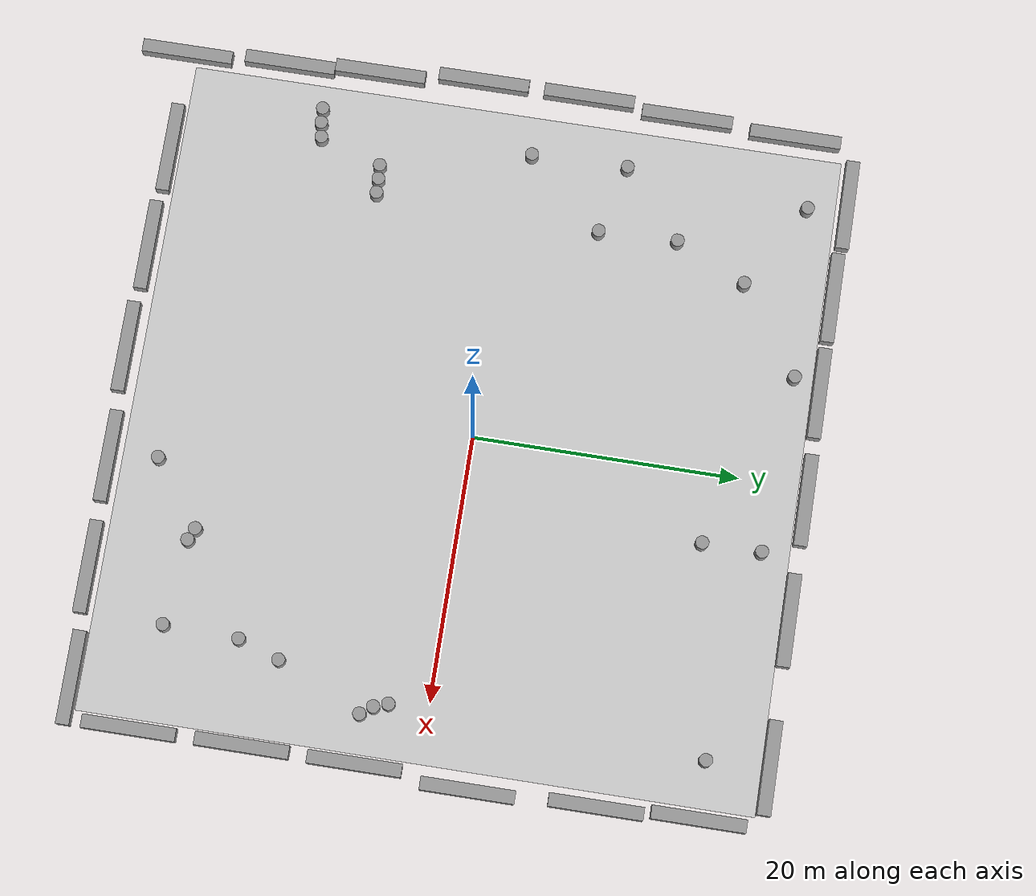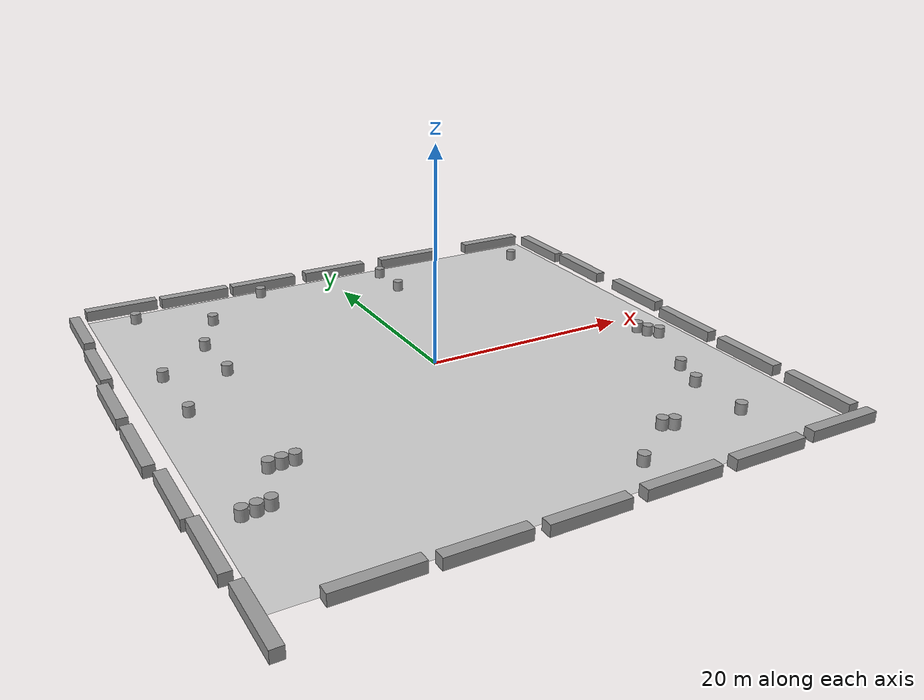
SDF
<sdf version="1.7">
 <world name="default">
  <light name="sun" type="directional">
   <pose>0 0 10 0 -0 0</pose>
   <diffuse>0.8 0.8 0.8 1</diffuse>
   <specular>0.2 0.2 0.2 1</specular>
   <attenuation>
    <range>1000</range>
    <constant>0.9</constant>
    <linear>0.01</linear>
    <quadratic>0.001</quadratic>
   </attenuation>
   <direction>-0.5 0.1 -0.9</direction>
   <spot><inner_angle>0</inner_angle><outer_angle>0</outer_angle><falloff>0</falloff></spot>
  </light>
  <gravity>0 0 -9.8</gravity>
  <magnetic_field>6e-06 2.3e-05 -4.2e-05</magnetic_field>
  <atmosphere type="adiabatic"/>
  <physics type="ode">
   <max_step_size>0.001</max_step_size>
   <real_time_factor>1</real_time_factor>
   <real_time_update_rate>1000</real_time_update_rate>
  </physics>
  <scene><ambient>0.4 0.4 0.4 1</ambient><background>0.7 0.7 0.7 1</background><shadows>1</shadows></scene>
  <spherical_coordinates>
   <surface_model>EARTH_WGS84</surface_model>
   <latitude_deg>0</latitude_deg>
   <longitude_deg>0</longitude_deg>
   <elevation>0</elevation>
   <heading_deg>0</heading_deg>
  </spherical_coordinates>
  <model name="grass">
   <static>1</static>
   <link name="link">
    <collision name="collision">
     <geometry><plane><normal>0 0 1</normal><size>10 10</size></plane></geometry>
     <surface><friction><ode><mu>100</mu><mu2>50</mu2></ode></friction></surface>
    </collision>
    <visual name="visual">
     <cast_shadows>0</cast_shadows>
     <geometry><plane><normal>0 0 1</normal><size>50 50</size></plane></geometry>
     <material>
      <script><uri>model://grass/materials/scripts/grass.material</uri><name>grass/ground</name></script>
     </material>
    </visual>
   </link>
   <pose>-0.500597 -0.51469 0 0 -0 0</pose>
  </model>
  <model name="unit_cylinder">
   <pose>10.068 -19.0924 0.499997 2e-06 1e-06 0.002457</pose>
   <link name="link">
    <inertial>
     <mass>1</mass>
     <inertia><ixx>0.145833</ixx><ixy>0</ixy><ixz>0</ixz><iyy>0.145833</iyy><iyz>0</iyz><izz>0.125</izz></inertia>
    </inertial>
    <collision name="collision">
     <geometry><cylinder><radius>0.5</radius><length>1</length></cylinder></geometry>
    </collision>
    <visual name="visual">
     <geometry><cylinder><radius>0.5</radius><length>1</length></cylinder></geometry>
     <material>
      <script><name>Gazebo/Grey</name><uri>file://media/materials/scripts/gazebo.material</uri></script>
     </material>
    </visual>
   </link>
  </model>
  <model name="unit_cylinder_0">
   <pose>5.23243 -22.7535 0.499997 2e-06 1e-06 0</pose>
   <link name="link">
    <inertial>
     <mass>1</mass>
     <inertia><ixx>0.145833</ixx><ixy>0</ixy><ixz>0</ixz><iyy>0.145833</iyy><iyz>0</iyz><izz>0.125</izz></inertia>
    </inertial>
    <collision name="collision">
     <geometry><cylinder><radius>0.5</radius><length>1</length></cylinder></geometry>
    </collision>
    <visual name="visual">
     <geometry><cylinder><radius>0.5</radius><length>1</length></cylinder></geometry>
     <material>
      <script><name>Gazebo/Grey</name><uri>file://media/materials/scripts/gazebo.material</uri></script>
     </material>
    </visual>
   </link>
  </model>
  <model name="unit_cylinder_1">
   <pose>10.9805 -19.5037 0.499996 2e-06 -0 0.009473</pose>
   <link name="link">
    <inertial>
     <mass>1</mass>
     <inertia><ixx>0.145833</ixx><ixy>0</ixy><ixz>0</ixz><iyy>0.145833</iyy><iyz>0</iyz><izz>0.125</izz></inertia>
    </inertial>
    <collision name="collision">
     <geometry><cylinder><radius>0.5</radius><length>1</length></cylinder></geometry>
    </collision>
    <visual name="visual">
     <geometry><cylinder><radius>0.5</radius><length>1</length></cylinder></geometry>
     <material>
      <script><name>Gazebo/Grey</name><uri>file://media/materials/scripts/gazebo.material</uri></script>
     </material>
    </visual>
   </link>
  </model>
  <model name="unit_cylinder_2">
   <pose>17.4229 -20.1741 0.499997 2e-06 1e-06 0</pose>
   <link name="link">
    <inertial>
     <mass>1</mass>
     <inertia><ixx>0.145833</ixx><ixy>0</ixy><ixz>0</ixz><iyy>0.145833</iyy><iyz>0</iyz><izz>0.125</izz></inertia>
    </inertial>
    <collision name="collision">
     <geometry><cylinder><radius>0.5</radius><length>1</length></cylinder></geometry>
    </collision>
    <visual name="visual">
     <geometry><cylinder><radius>0.5</radius><length>1</length></cylinder></geometry>
     <material>
      <script><name>Gazebo/Grey</name><uri>file://media/materials/scripts/gazebo.material</uri></script>
     </material>
    </visual>
   </link>
  </model>
  <model name="unit_cylinder_3">
   <pose>17.5996 -14.5253 0.499997 2e-06 1e-06 0</pose>
   <link name="link">
    <inertial>
     <mass>1</mass>
     <inertia><ixx>0.145833</ixx><ixy>0</ixy><ixz>0</ixz><iyy>0.145833</iyy><iyz>0</iyz><izz>0.125</izz></inertia>
    </inertial>
    <collision name="collision">
     <geometry><cylinder><radius>0.5</radius><length>1</length></cylinder></geometry>
    </collision>
    <visual name="visual">
     <geometry><cylinder><radius>0.5</radius><length>1</length></cylinder></geometry>
     <material>
      <script><name>Gazebo/Grey</name><uri>file://media/materials/scripts/gazebo.material</uri></script>
     </material>
    </visual>
   </link>
  </model>
  <model name="unit_cylinder_4">
   <pose>18.6652 -11.3863 0.499994 -2e-06 -1e-06 0</pose>
   <link name="link">
    <inertial>
     <mass>1</mass>
     <inertia><ixx>0.145833</ixx><ixy>0</ixy><ixz>0</ixz><iyy>0.145833</iyy><iyz>0</iyz><izz>0.125</izz></inertia>
    </inertial>
    <collision name="collision">
     <geometry><cylinder><radius>0.5</radius><length>1</length></cylinder></geometry>
    </collision>
    <visual name="visual">
     <geometry><cylinder><radius>0.5</radius><length>1</length></cylinder></geometry>
     <material>
      <script><name>Gazebo/Grey</name><uri>file://media/materials/scripts/gazebo.material</uri></script>
     </material>
    </visual>
   </link>
  </model>
  <model name="unit_cylinder_5">
   <pose>21.6345 -4.91974 0.499997 3e-06 1e-06 -0</pose>
   <link name="link">
    <inertial>
     <mass>1</mass>
     <inertia><ixx>0.145833</ixx><ixy>0</ixy><ixz>0</ixz><iyy>0.145833</iyy><iyz>0</iyz><izz>0.125</izz></inertia>
    </inertial>
    <collision name="collision">
     <geometry><cylinder><radius>0.5</radius><length>1</length></cylinder></geometry>
    </collision>
    <visual name="visual">
     <geometry><cylinder><radius>0.5</radius><length>1</length></cylinder></geometry>
     <material>
      <script><name>Gazebo/Grey</name><uri>file://media/materials/scripts/gazebo.material</uri></script>
     </material>
    </visual>
   </link>
  </model>
  <model name="unit_cylinder_6">
   <pose>20.9636 -4.0158 0.499997 3e-06 1e-06 -0</pose>
   <link name="link">
    <inertial>
     <mass>1</mass>
     <inertia><ixx>0.145833</ixx><ixy>0</ixy><ixz>0</ixz><iyy>0.145833</iyy><iyz>0</iyz><izz>0.125</izz></inertia>
    </inertial>
    <collision name="collision">
     <geometry><cylinder><radius>0.5</radius><length>1</length></cylinder></geometry>
    </collision>
    <visual name="visual">
     <geometry><cylinder><radius>0.5</radius><length>1</length></cylinder></geometry>
     <material>
      <script><name>Gazebo/Grey</name><uri>file://media/materials/scripts/gazebo.material</uri></script>
     </material>
    </visual>
   </link>
  </model>
  <model name="unit_cylinder_7">
   <pose>20.5934 -2.95704 0.499994 -3e-06 -1e-06 -0</pose>
   <link name="link">
    <inertial>
     <mass>1</mass>
     <inertia><ixx>0.145833</ixx><ixy>0</ixy><ixz>0</ixz><iyy>0.145833</iyy><iyz>0</iyz><izz>0.125</izz></inertia>
    </inertial>
    <collision name="collision">
     <geometry><cylinder><radius>0.5</radius><length>1</length></cylinder></geometry>
    </collision>
    <visual name="visual">
     <geometry><cylinder><radius>0.5</radius><length>1</length></cylinder></geometry>
     <material>
      <script><name>Gazebo/Grey</name><uri>file://media/materials/scripts/gazebo.material</uri></script>
     </material>
    </visual>
   </link>
  </model>
  <model name="unit_cylinder_8">
   <pose>21.0544 20.3519 0.499997 3e-06 1e-06 -0</pose>
   <link name="link">
    <inertial>
     <mass>1</mass>
     <inertia><ixx>0.145833</ixx><ixy>0</ixy><ixz>0</ixz><iyy>0.145833</iyy><iyz>0</iyz><izz>0.125</izz></inertia>
    </inertial>
    <collision name="collision">
     <geometry><cylinder><radius>0.5</radius><length>1</length></cylinder></geometry>
    </collision>
    <visual name="visual">
     <geometry><cylinder><radius>0.5</radius><length>1</length></cylinder></geometry>
     <material>
      <script><name>Gazebo/Grey</name><uri>file://media/materials/scripts/gazebo.material</uri></script>
     </material>
    </visual>
   </link>
  </model>
  <model name="unit_cylinder_9">
   <pose>5.31202 22.3543 0.499994 -3e-06 -1e-06 -0</pose>
   <link name="link">
    <inertial>
     <mass>1</mass>
     <inertia><ixx>0.145833</ixx><ixy>0</ixy><ixz>0</ixz><iyy>0.145833</iyy><iyz>0</iyz><izz>0.125</izz></inertia>
    </inertial>
    <collision name="collision">
     <geometry><cylinder><radius>0.5</radius><length>1</length></cylinder></geometry>
    </collision>
    <visual name="visual">
     <geometry><cylinder><radius>0.5</radius><length>1</length></cylinder></geometry>
     <material>
      <script><name>Gazebo/Grey</name><uri>file://media/materials/scripts/gazebo.material</uri></script>
     </material>
    </visual>
   </link>
  </model>
  <model name="unit_cylinder_10">
   <pose>5.32308 17.9226 0.499997 3e-06 1e-06 -0</pose>
   <link name="link">
    <inertial>
     <mass>1</mass>
     <inertia><ixx>0.145833</ixx><ixy>0</ixy><ixz>0</ixz><iyy>0.145833</iyy><iyz>0</iyz><izz>0.125</izz></inertia>
    </inertial>
    <collision name="collision">
     <geometry><cylinder><radius>0.5</radius><length>1</length></cylinder></geometry>
    </collision>
    <visual name="visual">
     <geometry><cylinder><radius>0.5</radius><length>1</length></cylinder></geometry>
     <material>
      <script><name>Gazebo/Grey</name><uri>file://media/materials/scripts/gazebo.material</uri></script>
     </material>
    </visual>
   </link>
  </model>
  <model name="unit_cylinder_11">
   <pose>-8.15629 23.0363 0.499997 3e-06 1e-06 -0</pose>
   <link name="link">
    <inertial>
     <mass>1</mass>
     <inertia><ixx>0.145833</ixx><ixy>0</ixy><ixz>0</ixz><iyy>0.145833</iyy><iyz>0</iyz><izz>0.125</izz></inertia>
    </inertial>
    <collision name="collision">
     <geometry><cylinder><radius>0.5</radius><length>1</length></cylinder></geometry>
    </collision>
    <visual name="visual">
     <geometry><cylinder><radius>0.5</radius><length>1</length></cylinder></geometry>
     <material>
      <script><name>Gazebo/Grey</name><uri>file://media/materials/scripts/gazebo.material</uri></script>
     </material>
    </visual>
   </link>
  </model>
  <model name="unit_cylinder_12">
   <pose>-21.3041 22.3159 0.499994 -3e-06 -1e-06 -0</pose>
   <link name="link">
    <inertial>
     <mass>1</mass>
     <inertia><ixx>0.145833</ixx><ixy>0</ixy><ixz>0</ixz><iyy>0.145833</iyy><iyz>0</iyz><izz>0.125</izz></inertia>
    </inertial>
    <collision name="collision">
     <geometry><cylinder><radius>0.5</radius><length>1</length></cylinder></geometry>
    </collision>
    <visual name="visual">
     <geometry><cylinder><radius>0.5</radius><length>1</length></cylinder></geometry>
     <material>
      <script><name>Gazebo/Grey</name><uri>file://media/materials/scripts/gazebo.material</uri></script>
     </material>
    </visual>
   </link>
  </model>
  <model name="unit_cylinder_13">
   <pose>-17.2545 12.9465 0.499994 -3e-06 -1e-06 -0</pose>
   <link name="link">
    <inertial>
     <mass>1</mass>
     <inertia><ixx>0.145833</ixx><ixy>0</ixy><ixz>0</ixz><iyy>0.145833</iyy><iyz>0</iyz><izz>0.125</izz></inertia>
    </inertial>
    <collision name="collision">
     <geometry><cylinder><radius>0.5</radius><length>1</length></cylinder></geometry>
    </collision>
    <visual name="visual">
     <geometry><cylinder><radius>0.5</radius><length>1</length></cylinder></geometry>
     <material>
      <script><name>Gazebo/Grey</name><uri>file://media/materials/scripts/gazebo.material</uri></script>
     </material>
    </visual>
   </link>
  </model>
  <model name="unit_cylinder_14">
   <pose>-22.4143 8.40238 0.499994 -3e-06 -1e-06 -0</pose>
   <link name="link">
    <inertial>
     <mass>1</mass>
     <inertia><ixx>0.145833</ixx><ixy>0</ixy><ixz>0</ixz><iyy>0.145833</iyy><iyz>0</iyz><izz>0.125</izz></inertia>
    </inertial>
    <collision name="collision">
     <geometry><cylinder><radius>0.5</radius><length>1</length></cylinder></geometry>
    </collision>
    <visual name="visual">
     <geometry><cylinder><radius>0.5</radius><length>1</length></cylinder></geometry>
     <material>
      <script><name>Gazebo/Grey</name><uri>file://media/materials/scripts/gazebo.material</uri></script>
     </material>
    </visual>
   </link>
  </model>
  <model name="unit_cylinder_15">
   <pose>-17.0837 6.95572 0.499994 -3e-06 -1e-06 -0</pose>
   <link name="link">
    <inertial>
     <mass>1</mass>
     <inertia><ixx>0.145833</ixx><ixy>0</ixy><ixz>0</ixz><iyy>0.145833</iyy><iyz>0</iyz><izz>0.125</izz></inertia>
    </inertial>
    <collision name="collision">
     <geometry><cylinder><radius>0.5</radius><length>1</length></cylinder></geometry>
    </collision>
    <visual name="visual">
     <geometry><cylinder><radius>0.5</radius><length>1</length></cylinder></geometry>
     <material>
      <script><name>Gazebo/Grey</name><uri>file://media/materials/scripts/gazebo.material</uri></script>
     </material>
    </visual>
   </link>
  </model>
  <model name="unit_cylinder_16">
   <pose>-14.7467 18.362 0.499996 3e-06 1e-06 -0</pose>
   <link name="link">
    <inertial>
     <mass>1</mass>
     <inertia><ixx>0.145833</ixx><ixy>0</ixy><ixz>0</ixz><iyy>0.145833</iyy><iyz>0</iyz><izz>0.125</izz></inertia>
    </inertial>
    <collision name="collision">
     <geometry><cylinder><radius>0.5</radius><length>1</length></cylinder></geometry>
    </collision>
    <visual name="visual">
     <geometry><cylinder><radius>0.5</radius><length>1</length></cylinder></geometry>
     <material>
      <script><name>Gazebo/Grey</name><uri>file://media/materials/scripts/gazebo.material</uri></script>
     </material>
    </visual>
   </link>
  </model>
  <model name="unit_cylinder_17">
   <pose>-22.2747 1.07529 0.499993 -0 -0 -0</pose>
   <link name="link">
    <inertial>
     <mass>1</mass>
     <inertia><ixx>0.145833</ixx><ixy>0</ixy><ixz>0</ixz><iyy>0.145833</iyy><iyz>0</iyz><izz>0.125</izz></inertia>
    </inertial>
    <collision name="collision">
     <geometry><cylinder><radius>0.5</radius><length>1</length></cylinder></geometry>
    </collision>
    <visual name="visual">
     <geometry><cylinder><radius>0.5</radius><length>1</length></cylinder></geometry>
     <material>
      <script><name>Gazebo/Grey</name><uri>file://media/materials/scripts/gazebo.material</uri></script>
     </material>
    </visual>
   </link>
  </model>
  <model name="unit_cylinder_18">
   <pose>-18.5547 -10.1454 0.5 0 0 -0.000668</pose>
   <link name="link">
    <inertial>
     <mass>1</mass>
     <inertia><ixx>0.145833</ixx><ixy>0</ixy><ixz>0</ixz><iyy>0.145833</iyy><iyz>0</iyz><izz>0.125</izz></inertia>
    </inertial>
    <collision name="collision">
     <geometry><cylinder><radius>0.5</radius><length>1</length></cylinder></geometry>
    </collision>
    <visual name="visual">
     <geometry><cylinder><radius>0.5</radius><length>1</length></cylinder></geometry>
     <material>
      <script><name>Gazebo/Grey</name><uri>file://media/materials/scripts/gazebo.material</uri></script>
     </material>
    </visual>
   </link>
  </model>
  <model name="unit_cylinder_19">
   <pose>-17.4503 -10.1062 0.499997 3e-06 1e-06 -0.002645</pose>
   <link name="link">
    <inertial>
     <mass>1</mass>
     <inertia><ixx>0.145833</ixx><ixy>0</ixy><ixz>0</ixz><iyy>0.145833</iyy><iyz>0</iyz><izz>0.125</izz></inertia>
    </inertial>
    <collision name="collision">
     <geometry><cylinder><radius>0.5</radius><length>1</length></cylinder></geometry>
    </collision>
    <visual name="visual">
     <geometry><cylinder><radius>0.5</radius><length>1</length></cylinder></geometry>
     <material>
      <script><name>Gazebo/Grey</name><uri>file://media/materials/scripts/gazebo.material</uri></script>
     </material>
    </visual>
   </link>
  </model>
  <model name="unit_cylinder_20">
   <pose>-19.6264 -10.2158 0.499996 3e-06 1e-06 0.000567</pose>
   <link name="link">
    <inertial>
     <mass>1</mass>
     <inertia><ixx>0.145833</ixx><ixy>0</ixy><ixz>0</ixz><iyy>0.145833</iyy><iyz>0</iyz><izz>0.125</izz></inertia>
    </inertial>
    <collision name="collision">
     <geometry><cylinder><radius>0.5</radius><length>1</length></cylinder></geometry>
    </collision>
    <visual name="visual">
     <geometry><cylinder><radius>0.5</radius><length>1</length></cylinder></geometry>
     <material>
      <script><name>Gazebo/Grey</name><uri>file://media/materials/scripts/gazebo.material</uri></script>
     </material>
    </visual>
   </link>
  </model>
  <model name="unit_cylinder_21">
   <pose>-23.4196 -15.2422 0.499997 3e-06 2e-06 0.001576</pose>
   <link name="link">
    <inertial>
     <mass>1</mass>
     <inertia><ixx>0.145833</ixx><ixy>0</ixy><ixz>0</ixz><iyy>0.145833</iyy><iyz>0</iyz><izz>0.125</izz></inertia>
    </inertial>
    <collision name="collision">
     <geometry><cylinder><radius>0.5</radius><length>1</length></cylinder></geometry>
    </collision>
    <visual name="visual">
     <geometry><cylinder><radius>0.5</radius><length>1</length></cylinder></geometry>
     <material>
      <script><name>Gazebo/Grey</name><uri>file://media/materials/scripts/gazebo.material</uri></script>
     </material>
    </visual>
   </link>
  </model>
  <model name="unit_cylinder_22">
   <pose>-22.2905 -15.1677 0.499993 1e-06 -0 -8.6e-05</pose>
   <link name="link">
    <inertial>
     <mass>1</mass>
     <inertia><ixx>0.145833</ixx><ixy>0</ixy><ixz>0</ixz><iyy>0.145833</iyy><iyz>0</iyz><izz>0.125</izz></inertia>
    </inertial>
    <collision name="collision">
     <geometry><cylinder><radius>0.5</radius><length>1</length></cylinder></geometry>
    </collision>
    <visual name="visual">
     <geometry><cylinder><radius>0.5</radius><length>1</length></cylinder></geometry>
     <material>
      <script><name>Gazebo/Grey</name><uri>file://media/materials/scripts/gazebo.material</uri></script>
     </material>
    </visual>
   </link>
  </model>
  <model name="unit_cylinder_23">
   <pose>-21.1542 -14.9669 0.499997 2e-06 1e-06 0</pose>
   <link name="link">
    <inertial>
     <mass>1</mass>
     <inertia><ixx>0.145833</ixx><ixy>0</ixy><ixz>0</ixz><iyy>0.145833</iyy><iyz>0</iyz><izz>0.125</izz></inertia>
    </inertial>
    <collision name="collision">
     <geometry><cylinder><radius>0.5</radius><length>1</length></cylinder></geometry>
    </collision>
    <visual name="visual">
     <geometry><cylinder><radius>0.5</radius><length>1</length></cylinder></geometry>
     <material>
      <script><name>Gazebo/Grey</name><uri>file://media/materials/scripts/gazebo.material</uri></script>
     </material>
    </visual>
   </link>
  </model>
  <audio><device>default</device></audio>
  <model name="unit_box">
   <pose>-18.5807 -26.1848 0.490855 1e-06 -0.002637 -0.000546</pose>
   <link name="link">
    <inertial>
     <mass>1</mass>
     <inertia>
      <ixx>0.166667</ixx>
      <ixy>0</ixy>
      <ixz>0</ixz>
      <iyy>0.166667</iyy>
      <iyz>0</iyz>
      <izz>0.166667</izz>
     </inertia>
    </inertial>
    <collision name="collision"><geometry><box><size>6.94207 1 1</size></box></geometry></collision>
    <visual name="visual">
     <geometry><box><size>6.94207 1 1</size></box></geometry>
     <material>
      <script><name>Gazebo/Grey</name><uri>file://media/materials/scripts/gazebo.material</uri></script>
     </material>
    </visual>
   </link>
  </model>
  <model name="unit_box_clone">
   <pose>-10.7548 -26.4471 0.490855 -1e-06 0.002637 -0.000546</pose>
   <link name="link">
    <inertial>
     <mass>1</mass>
     <inertia>
      <ixx>0.166667</ixx>
      <ixy>0</ixy>
      <ixz>0</ixz>
      <iyy>0.166667</iyy>
      <iyz>0</iyz>
      <izz>0.166667</izz>
     </inertia>
    </inertial>
    <collision name="collision"><geometry><box><size>6.94207 1 1</size></box></geometry></collision>
    <visual name="visual">
     <geometry><box><size>6.94207 1 1</size></box></geometry>
     <material>
      <script><name>Gazebo/Grey</name><uri>file://media/materials/scripts/gazebo.material</uri></script>
     </material>
    </visual>
   </link>
  </model>
  <model name="unit_box_clone_0">
   <pose>-2.74138 -26.6745 0.490855 1e-06 -0.002637 -0.000546</pose>
   <link name="link">
    <inertial>
     <mass>1</mass>
     <inertia>
      <ixx>0.166667</ixx>
      <ixy>0</ixy>
      <ixz>0</ixz>
      <iyy>0.166667</iyy>
      <iyz>0</iyz>
      <izz>0.166667</izz>
     </inertia>
    </inertial>
    <collision name="collision"><geometry><box><size>6.94207 1 1</size></box></geometry></collision>
    <visual name="visual">
     <geometry><box><size>6.94207 1 1</size></box></geometry>
     <material>
      <script><name>Gazebo/Grey</name><uri>file://media/materials/scripts/gazebo.material</uri></script>
     </material>
    </visual>
   </link>
  </model>
  <model name="unit_box_clone_1">
   <pose>5.67323 -26.4267 0.490855 1e-06 -0.002637 -0.000546</pose>
   <link name="link">
    <inertial>
     <mass>1</mass>
     <inertia>
      <ixx>0.166667</ixx>
      <ixy>0</ixy>
      <ixz>0</ixz>
      <iyy>0.166667</iyy>
      <iyz>0</iyz>
      <izz>0.166667</izz>
     </inertia>
    </inertial>
    <collision name="collision"><geometry><box><size>6.94207 1 1</size></box></geometry></collision>
    <visual name="visual">
     <geometry><box><size>6.94207 1 1</size></box></geometry>
     <material>
      <script><name>Gazebo/Grey</name><uri>file://media/materials/scripts/gazebo.material</uri></script>
     </material>
    </visual>
   </link>
  </model>
  <model name="unit_box_clone_2">
   <pose>14.0632 -26.3666 0.490855 1e-06 -0.002637 -0.000546</pose>
   <link name="link">
    <inertial>
     <mass>1</mass>
     <inertia>
      <ixx>0.166667</ixx>
      <ixy>0</ixy>
      <ixz>0</ixz>
      <iyy>0.166667</iyy>
      <iyz>0</iyz>
      <izz>0.166667</izz>
     </inertia>
    </inertial>
    <collision name="collision"><geometry><box><size>6.94207 1 1</size></box></geometry></collision>
    <visual name="visual">
     <geometry><box><size>6.94207 1 1</size></box></geometry>
     <material>
      <script><name>Gazebo/Grey</name><uri>file://media/materials/scripts/gazebo.material</uri></script>
     </material>
    </visual>
   </link>
  </model>
  <model name="unit_box_clone_3">
   <pose>22.2677 -26.0626 0.490855 -1e-06 0.002637 -0.000546</pose>
   <link name="link">
    <inertial>
     <mass>1</mass>
     <inertia>
      <ixx>0.166667</ixx>
      <ixy>0</ixy>
      <ixz>0</ixz>
      <iyy>0.166667</iyy>
      <iyz>0</iyz>
      <izz>0.166667</izz>
     </inertia>
    </inertial>
    <collision name="collision"><geometry><box><size>6.94207 1 1</size></box></geometry></collision>
    <visual name="visual">
     <geometry><box><size>6.94207 1 1</size></box></geometry>
     <material>
      <script><name>Gazebo/Grey</name><uri>file://media/materials/scripts/gazebo.material</uri></script>
     </material>
    </visual>
   </link>
  </model>
  <model name="unit_box_clone_4">
   <pose>25.238 -21.2724 0.490855 1e-06 0.002637 -1.57029</pose>
   <link name="link">
    <inertial>
     <mass>1</mass>
     <inertia>
      <ixx>0.166667</ixx>
      <ixy>0</ixy>
      <ixz>0</ixz>
      <iyy>0.166667</iyy>
      <iyz>0</iyz>
      <izz>0.166667</izz>
     </inertia>
    </inertial>
    <collision name="collision"><geometry><box><size>6.94207 1 1</size></box></geometry></collision>
    <visual name="visual">
     <geometry><box><size>6.94207 1 1</size></box></geometry>
     <material>
      <script><name>Gazebo/Grey</name><uri>file://media/materials/scripts/gazebo.material</uri></script>
     </material>
    </visual>
   </link>
  </model>
  <model name="unit_box_clone_5">
   <pose>-22.0136 25.2755 0.490855 -1e-06 0.002637 -0.000546</pose>
   <link name="link">
    <inertial>
     <mass>1</mass>
     <inertia>
      <ixx>0.166667</ixx>
      <ixy>0</ixy>
      <ixz>0</ixz>
      <iyy>0.166667</iyy>
      <iyz>0</iyz>
      <izz>0.166667</izz>
     </inertia>
    </inertial>
    <collision name="collision"><geometry><box><size>6.94207 1 1</size></box></geometry></collision>
    <visual name="visual">
     <geometry><box><size>6.94207 1 1</size></box></geometry>
     <material>
      <script><name>Gazebo/Grey</name><uri>file://media/materials/scripts/gazebo.material</uri></script>
     </material>
    </visual>
   </link>
  </model>
  <model name="unit_box_clone_6">
   <pose>-14.6322 25.0719 0.490855 -1e-06 0.002637 -0.000546</pose>
   <link name="link">
    <inertial>
     <mass>1</mass>
     <inertia>
      <ixx>0.166667</ixx>
      <ixy>0</ixy>
      <ixz>0</ixz>
      <iyy>0.166667</iyy>
      <iyz>0</iyz>
      <izz>0.166667</izz>
     </inertia>
    </inertial>
    <collision name="collision"><geometry><box><size>6.94207 1 1</size></box></geometry></collision>
    <visual name="visual">
     <geometry><box><size>6.94207 1 1</size></box></geometry>
     <material>
      <script><name>Gazebo/Grey</name><uri>file://media/materials/scripts/gazebo.material</uri></script>
     </material>
    </visual>
   </link>
  </model>
  <model name="unit_box_clone_7">
   <pose>-7.19963 25.0317 0.490855 1e-06 -0.002637 -0.000546</pose>
   <link name="link">
    <inertial>
     <mass>1</mass>
     <inertia>
      <ixx>0.166667</ixx>
      <ixy>0</ixy>
      <ixz>0</ixz>
      <iyy>0.166667</iyy>
      <iyz>0</iyz>
      <izz>0.166667</izz>
     </inertia>
    </inertial>
    <collision name="collision"><geometry><box><size>6.94207 1 1</size></box></geometry></collision>
    <visual name="visual">
     <geometry><box><size>6.94207 1 1</size></box></geometry>
     <material>
      <script><name>Gazebo/Grey</name><uri>file://media/materials/scripts/gazebo.material</uri></script>
     </material>
    </visual>
   </link>
  </model>
  <model name="unit_box_clone_8">
   <pose>0.985991 25.0732 0.490855 -1e-06 0.002637 -0.000546</pose>
   <link name="link">
    <inertial>
     <mass>1</mass>
     <inertia>
      <ixx>0.166667</ixx>
      <ixy>0</ixy>
      <ixz>0</ixz>
      <iyy>0.166667</iyy>
      <iyz>0</iyz>
      <izz>0.166667</izz>
     </inertia>
    </inertial>
    <collision name="collision"><geometry><box><size>6.94207 1 1</size></box></geometry></collision>
    <visual name="visual">
     <geometry><box><size>6.94207 1 1</size></box></geometry>
     <material>
      <script><name>Gazebo/Grey</name><uri>file://media/materials/scripts/gazebo.material</uri></script>
     </material>
    </visual>
   </link>
  </model>
  <model name="unit_box_clone_9">
   <pose>10.0208 24.9748 0.490855 -1e-06 0.002637 -0.000546</pose>
   <link name="link">
    <inertial>
     <mass>1</mass>
     <inertia>
      <ixx>0.166667</ixx>
      <ixy>0</ixy>
      <ixz>0</ixz>
      <iyy>0.166667</iyy>
      <iyz>0</iyz>
      <izz>0.166667</izz>
     </inertia>
    </inertial>
    <collision name="collision"><geometry><box><size>6.94207 1 1</size></box></geometry></collision>
    <visual name="visual">
     <geometry><box><size>6.94207 1 1</size></box></geometry>
     <material>
      <script><name>Gazebo/Grey</name><uri>file://media/materials/scripts/gazebo.material</uri></script>
     </material>
    </visual>
   </link>
  </model>
  <model name="unit_box_clone_10">
   <pose>20.8693 25.0006 0.490855 -1e-06 0.002637 -0.000546</pose>
   <link name="link">
    <inertial>
     <mass>1</mass>
     <inertia>
      <ixx>0.166667</ixx>
      <ixy>0</ixy>
      <ixz>0</ixz>
      <iyy>0.166667</iyy>
      <iyz>0</iyz>
      <izz>0.166667</izz>
     </inertia>
    </inertial>
    <collision name="collision"><geometry><box><size>6.94207 1 1</size></box></geometry></collision>
    <visual name="visual">
     <geometry><box><size>6.94207 1 1</size></box></geometry>
     <material>
      <script><name>Gazebo/Grey</name><uri>file://media/materials/scripts/gazebo.material</uri></script>
     </material>
    </visual>
   </link>
  </model>
  <model name="unit_box_clone_4_clone">
   <pose>25.1953 -12.9601 0.490855 -1e-06 -0.002637 -1.57029</pose>
   <link name="link">
    <inertial>
     <mass>1</mass>
     <inertia>
      <ixx>0.166667</ixx>
      <ixy>0</ixy>
      <ixz>0</ixz>
      <iyy>0.166667</iyy>
      <iyz>0</iyz>
      <izz>0.166667</izz>
     </inertia>
    </inertial>
    <collision name="collision"><geometry><box><size>6.94207 1 1</size></box></geometry></collision>
    <visual name="visual">
     <geometry><box><size>6.94207 1 1</size></box></geometry>
     <material>
      <script><name>Gazebo/Grey</name><uri>file://media/materials/scripts/gazebo.material</uri></script>
     </material>
    </visual>
   </link>
  </model>
  <model name="unit_box_clone_4_clone_0">
   <pose>25.2246 -4.69874 0.490855 -1e-06 -0.002637 -1.57029</pose>
   <link name="link">
    <inertial>
     <mass>1</mass>
     <inertia>
      <ixx>0.166667</ixx>
      <ixy>0</ixy>
      <ixz>0</ixz>
      <iyy>0.166667</iyy>
      <iyz>0</iyz>
      <izz>0.166667</izz>
     </inertia>
    </inertial>
    <collision name="collision"><geometry><box><size>6.94207 1 1</size></box></geometry></collision>
    <visual name="visual">
     <geometry><box><size>6.94207 1 1</size></box></geometry>
     <material>
      <script><name>Gazebo/Grey</name><uri>file://media/materials/scripts/gazebo.material</uri></script>
     </material>
    </visual>
   </link>
  </model>
  <model name="unit_box_clone_4_clone_1">
   <pose>25.8493 3.67232 0.490855 1e-06 0.002637 -1.57029</pose>
   <link name="link">
    <inertial>
     <mass>1</mass>
     <inertia>
      <ixx>0.166667</ixx>
      <ixy>0</ixy>
      <ixz>0</ixz>
      <iyy>0.166667</iyy>
      <iyz>0</iyz>
      <izz>0.166667</izz>
     </inertia>
    </inertial>
    <collision name="collision"><geometry><box><size>6.94207 1 1</size></box></geometry></collision>
    <visual name="visual">
     <geometry><box><size>6.94207 1 1</size></box></geometry>
     <material>
      <script><name>Gazebo/Grey</name><uri>file://media/materials/scripts/gazebo.material</uri></script>
     </material>
    </visual>
   </link>
  </model>
  <model name="unit_box_clone_4_clone_2">
   <pose>25.5764 13.0026 0.490855 1e-06 0.002637 -1.57029</pose>
   <link name="link">
    <inertial>
     <mass>1</mass>
     <inertia>
      <ixx>0.166667</ixx>
      <ixy>0</ixy>
      <ixz>0</ixz>
      <iyy>0.166667</iyy>
      <iyz>0</iyz>
      <izz>0.166667</izz>
     </inertia>
    </inertial>
    <collision name="collision"><geometry><box><size>6.94207 1 1</size></box></geometry></collision>
    <visual name="visual">
     <geometry><box><size>6.94207 1 1</size></box></geometry>
     <material>
      <script><name>Gazebo/Grey</name><uri>file://media/materials/scripts/gazebo.material</uri></script>
     </material>
    </visual>
   </link>
  </model>
  <model name="unit_box_clone_4_clone_3">
   <pose>25.3014 20.436 0.490855 -1e-06 -0.002637 -1.57029</pose>
   <link name="link">
    <inertial>
     <mass>1</mass>
     <inertia>
      <ixx>0.166667</ixx>
      <ixy>0</ixy>
      <ixz>0</ixz>
      <iyy>0.166667</iyy>
      <iyz>0</iyz>
      <izz>0.166667</izz>
     </inertia>
    </inertial>
    <collision name="collision"><geometry><box><size>6.94207 1 1</size></box></geometry></collision>
    <visual name="visual">
     <geometry><box><size>6.94207 1 1</size></box></geometry>
     <material>
      <script><name>Gazebo/Grey</name><uri>file://media/materials/scripts/gazebo.material</uri></script>
     </material>
    </visual>
   </link>
  </model>
  <model name="unit_box_clone_4_clone_4">
   <pose>-26.7715 20.6714 0.490855 -1e-06 -0.002637 -1.57029</pose>
   <link name="link">
    <inertial>
     <mass>1</mass>
     <inertia>
      <ixx>0.166667</ixx>
      <ixy>0</ixy>
      <ixz>0</ixz>
      <iyy>0.166667</iyy>
      <iyz>0</iyz>
      <izz>0.166667</izz>
     </inertia>
    </inertial>
    <collision name="collision"><geometry><box><size>6.94207 1 1</size></box></geometry></collision>
    <visual name="visual">
     <geometry><box><size>6.94207 1 1</size></box></geometry>
     <material>
      <script><name>Gazebo/Grey</name><uri>file://media/materials/scripts/gazebo.material</uri></script>
     </material>
    </visual>
   </link>
  </model>
  <model name="unit_box_clone_4_clone_5">
   <pose>-27.0811 12.3294 0.490855 1e-06 0.002637 -1.57029</pose>
   <link name="link">
    <inertial>
     <mass>1</mass>
     <inertia>
      <ixx>0.166667</ixx>
      <ixy>0</ixy>
      <ixz>0</ixz>
      <iyy>0.166667</iyy>
      <iyz>0</iyz>
      <izz>0.166667</izz>
     </inertia>
    </inertial>
    <collision name="collision"><geometry><box><size>6.94207 1 1</size></box></geometry></collision>
    <visual name="visual">
     <geometry><box><size>6.94207 1 1</size></box></geometry>
     <material>
      <script><name>Gazebo/Grey</name><uri>file://media/materials/scripts/gazebo.material</uri></script>
     </material>
    </visual>
   </link>
  </model>
  <model name="unit_box_clone_4_clone_6">
   <pose>-27.5707 4.71401 0.490855 -1e-06 -0.002637 -1.57029</pose>
   <link name="link">
    <inertial>
     <mass>1</mass>
     <inertia>
      <ixx>0.166667</ixx>
      <ixy>0</ixy>
      <ixz>0</ixz>
      <iyy>0.166667</iyy>
      <iyz>0</iyz>
      <izz>0.166667</izz>
     </inertia>
    </inertial>
    <collision name="collision"><geometry><box><size>6.94207 1 1</size></box></geometry></collision>
    <visual name="visual">
     <geometry><box><size>6.94207 1 1</size></box></geometry>
     <material>
      <script><name>Gazebo/Grey</name><uri>file://media/materials/scripts/gazebo.material</uri></script>
     </material>
    </visual>
   </link>
  </model>
  <model name="unit_box_clone_4_clone_7">
   <pose>-27.5759 -3.42721 0.490855 -1e-06 0.002637 -1.57131</pose>
   <link name="link">
    <inertial>
     <mass>1</mass>
     <inertia>
      <ixx>0.166667</ixx>
      <ixy>0</ixy>
      <ixz>0</ixz>
      <iyy>0.166667</iyy>
      <iyz>0</iyz>
      <izz>0.166667</izz>
     </inertia>
    </inertial>
    <collision name="collision"><geometry><box><size>6.94207 1 1</size></box></geometry></collision>
    <visual name="visual">
     <geometry><box><size>6.94207 1 1</size></box></geometry>
     <material>
      <script><name>Gazebo/Grey</name><uri>file://media/materials/scripts/gazebo.material</uri></script>
     </material>
    </visual>
   </link>
  </model>
  <model name="unit_box_clone_4_clone_8">
   <pose>-27.0362 -11.3591 0.490855 1e-06 0.002637 -1.57029</pose>
   <link name="link">
    <inertial>
     <mass>1</mass>
     <inertia>
      <ixx>0.166667</ixx>
      <ixy>0</ixy>
      <ixz>0</ixz>
      <iyy>0.166667</iyy>
      <iyz>0</iyz>
      <izz>0.166667</izz>
     </inertia>
    </inertial>
    <collision name="collision"><geometry><box><size>6.94207 1 1</size></box></geometry></collision>
    <visual name="visual">
     <geometry><box><size>6.94207 1 1</size></box></geometry>
     <material>
      <script><name>Gazebo/Grey</name><uri>file://media/materials/scripts/gazebo.material</uri></script>
     </material>
    </visual>
   </link>
  </model>
  <model name="unit_box_clone_4_clone_9">
   <pose>-26.6928 -18.3121 0.490855 -1e-06 -0.002637 -1.57029</pose>
   <link name="link">
    <inertial>
     <mass>1</mass>
     <inertia>
      <ixx>0.166667</ixx>
      <ixy>0</ixy>
      <ixz>0</ixz>
      <iyy>0.166667</iyy>
      <iyz>0</iyz>
      <izz>0.166667</izz>
     </inertia>
    </inertial>
    <collision name="collision"><geometry><box><size>6.94207 1 1</size></box></geometry></collision>
    <visual name="visual">
     <geometry><box><size>6.94207 1 1</size></box></geometry>
     <material>
      <script><name>Gazebo/Grey</name><uri>file://media/materials/scripts/gazebo.material</uri></script>
     </material>
    </visual>
   </link>
  </model>
  <model name="unit_box_clone_4_clone_10">
   <pose>-26.3198 -26.2364 0.490855 -1e-06 -0.002637 -1.57029</pose>
   <link name="link">
    <inertial>
     <mass>1</mass>
     <inertia>
      <ixx>0.166667</ixx>
      <ixy>0</ixy>
      <ixz>0</ixz>
      <iyy>0.166667</iyy>
      <iyz>0</iyz>
      <izz>0.166667</izz>
     </inertia>
    </inertial>
    <collision name="collision"><geometry><box><size>6.94207 1 1</size></box></geometry></collision>
    <visual name="visual">
     <geometry><box><size>6.94207 1 1</size></box></geometry>
     <material>
      <script><name>Gazebo/Grey</name><uri>file://media/materials/scripts/gazebo.material</uri></script>
     </material>
    </visual>
   </link>
  </model>
 </world>
</sdf>
